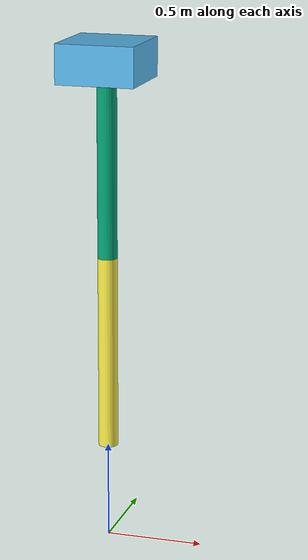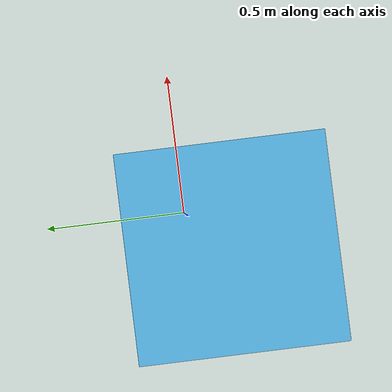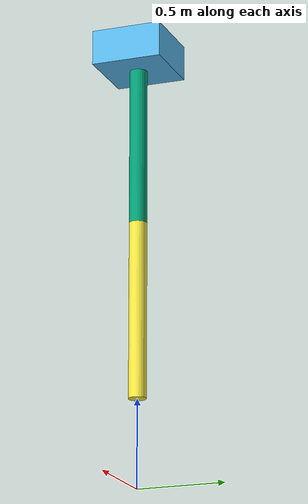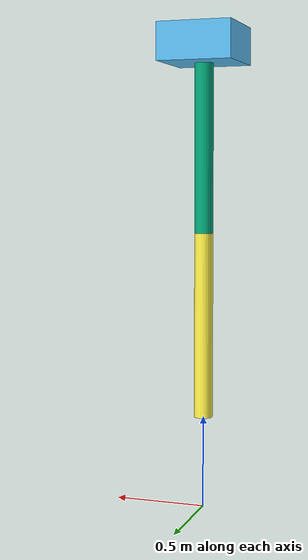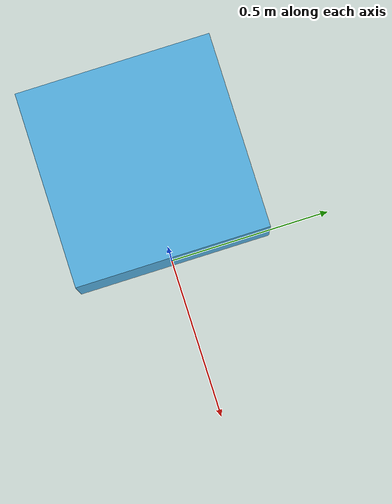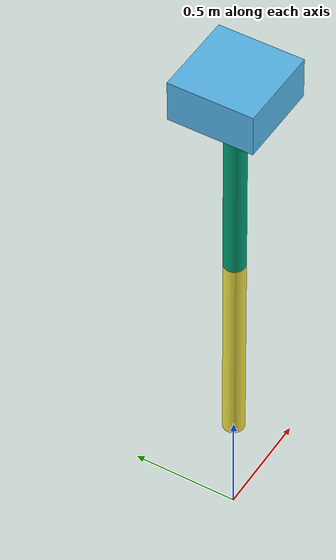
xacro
<?xml version="1.0"?>
<robot name="example_model" xmlns:xacro="http://www.ros.org/wiki/xacro">

  <link name="world"/>

  <joint name="fixed to ground" type="fixed">
    <parent link="world"/>
    <child link="bed"/>
    <origin xyz="0 0 0"/>
    <axis xyz="0 0 0"/>
  </joint>

  <link name="bed">
    <visual>
      <origin xyz="0 0 2.5" rpy="0 0 0"/>
      <geometry>
	<box size="0.4 0.4 0.2"/>
      </geometry>
    </visual>

    <collision>
      <origin xyz="0 0 2.5" rpy="0 0 0"/>
      <geometry>
	<box size="0.4 0.4 0.2"/>
      </geometry>
    </collision>

    <inertial>
      <origin xyz="0 0 0" rpy="0 0 0"/>
      <mass value="1"/>
      <inertia
	ixx="0.01" ixy="0.0" ixz="0.0"
	iyy="0.01" iyz="0.0"
	izz="0.01"/>
    </inertial>
  </link>

  <joint name="joint1" type="revolute">
    <parent link="bed"/>
    <child link="link1"/>
    <origin xyz="0 0 2.5"/>
    <axis xyz="0 1 0"/>
    <limit effort="1000" lower="-1.57" upper="1.57" velocity="10"/>
  </joint>

  <link name="link1">
    <visual>
      <origin xyz="0 0 -0.5" rpy="0 0 0"/>
      <geometry>
	<cylinder length="1" radius="0.05"/>
      </geometry>
    </visual>

    <collision>
      <origin xyz="0 0 -0.5" rpy="0 0 0"/>
      <geometry>
	<cylinder length="1" radius="0.05"/>
      </geometry>
    </collision>

    <inertial>
      <origin xyz="0 0 -0.5" rpy="0 0 0"/>
      <mass value="1"/>
      <inertia
	ixx="0.01" ixy="0.0" ixz="0.0"
	iyy="0.01" iyz="0.0"
	izz="0.01"/>
    </inertial>
  </link>

  <joint name="joint2" type="revolute">
    <parent link="link1"/>
    <child link="link2"/>
    <origin xyz="0 0 -1"/>
    <axis xyz="0 1 0"/>
    <limit effort="1000" lower="-1.57" upper="1.57" velocity="10"/>
  </joint>

  <link name="link2">
    <visual>
      <origin xyz="0 0 -0.5" rpy="0 0 0"/>
      <geometry>
	<cylinder length="1" radius="0.05"/>
      </geometry>
    </visual>

    <collision>
      <origin xyz="0 0 -0.5" rpy="0 0 0"/>
      <geometry>
	<cylinder length="1" radius="0.05"/>
      </geometry>
    </collision>

    <inertial>
      <origin xyz="0 0 -0.5" rpy="0 0 0"/>
      <mass value="1"/>
      <inertia
	ixx="0.01" ixy="0.0" ixz="0.0"
	iyy="0.01" iyz="0.0"
	izz="0.01"/>
    </inertial>
  </link>
</robot>
